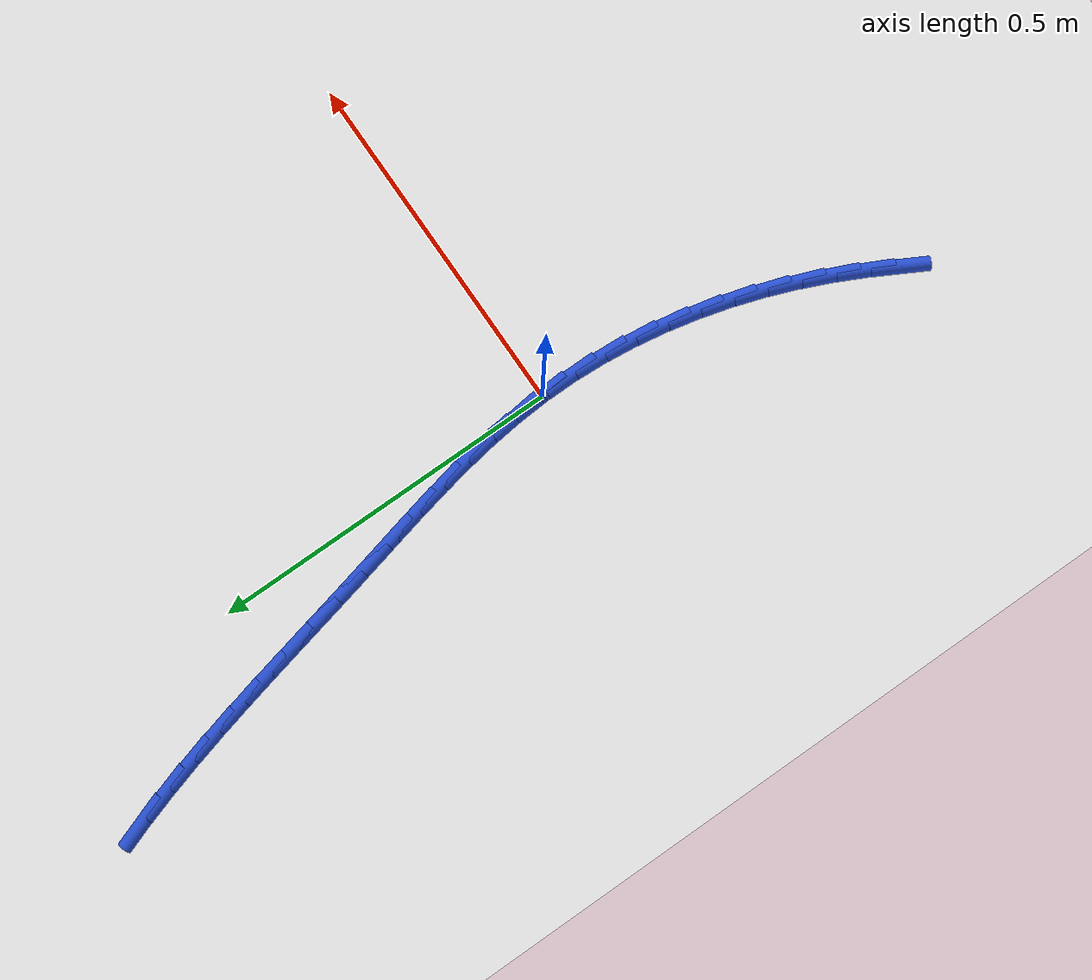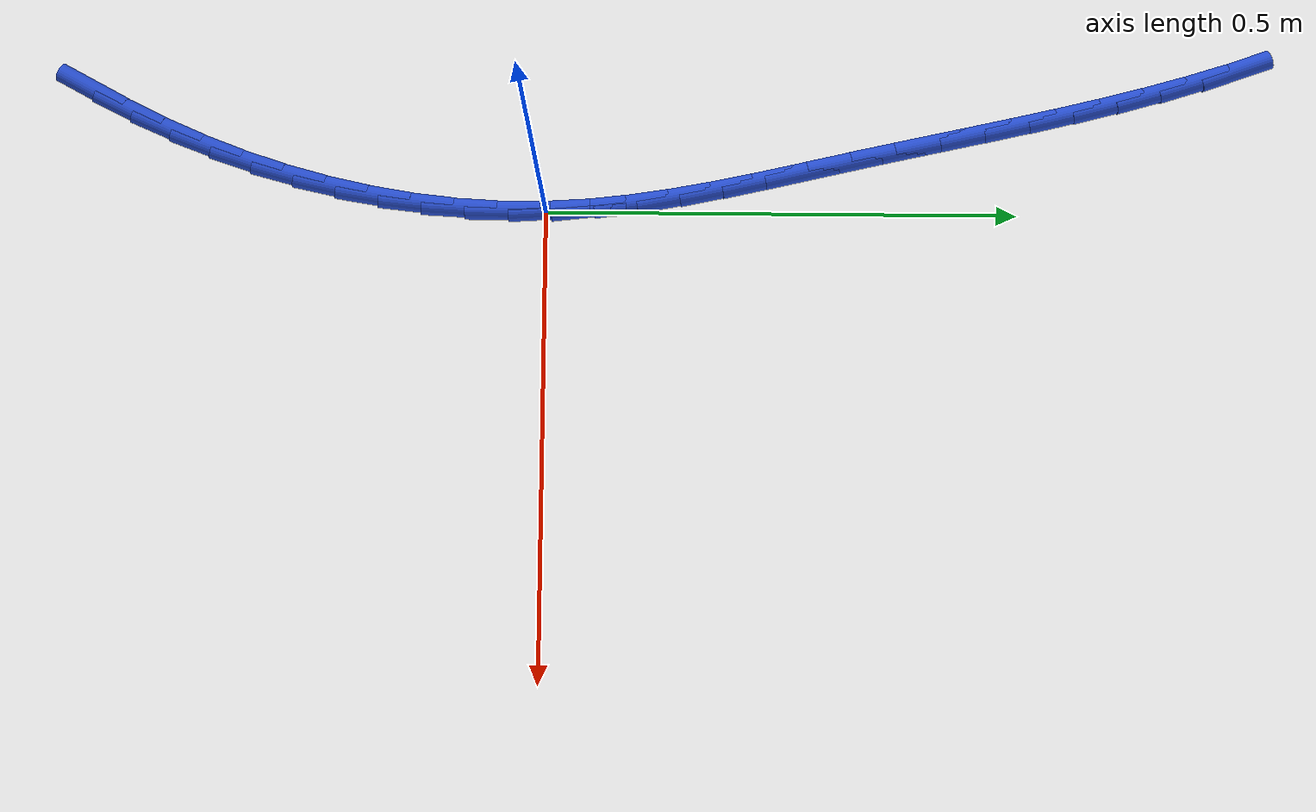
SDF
<sdf version="1.6">
 <world name="default">
  <model name="ground_plane">
   <static>1</static>
   <link name="link">
    <collision name="collision">
     <geometry><plane><normal>0 0 1</normal><size>100 100</size></plane></geometry>
     <surface><friction><ode><mu>100</mu><mu2>50</mu2></ode></friction></surface>
    </collision>
    <visual name="visual">
     <cast_shadows>0</cast_shadows>
     <geometry><plane><normal>0 0 1</normal><size>100 100</size></plane></geometry>
     <material>
      <script><uri>file://media/materials/scripts/gazebo.material</uri><name>Gazebo/WhiteGlow</name></script>
     </material>
    </visual>
   </link>
  </model>
  <model name="line">
   <link name="link_0">
    <pose>-3.2959746043559335e-17 8.326672684688674e-17 0.01 0 1.57 -1.5091461247908138</pose>
    <collision name="collision">
     <geometry><cylinder><radius>0.01</radius><length>0.08</length></cylinder></geometry>
    </collision>
    <visual name="visual">
     <material>
      <script><name>Gazebo/Blue</name><uri>file://media/materials/scripts/gazebo.material</uri></script>
     </material>
     <geometry><cylinder><radius>0.01</radius><length>0.08</length></cylinder></geometry>
    </visual>
   </link>
   <link name="link_1">
    <pose>-0.002797153409749738 0.045313862125779925 0.01 0 1.57 -1.4577290639498848</pose>
    <collision name="collision">
     <geometry><cylinder><radius>0.01</radius><length>0.08</length></cylinder></geometry>
    </collision>
    <visual name="visual">
     <material>
      <script><name>Gazebo/Blue</name><uri>file://media/materials/scripts/gazebo.material</uri></script>
     </material>
     <geometry><cylinder><radius>0.01</radius><length>0.08</length></cylinder></geometry>
    </visual>
   </link>
   <link name="link_2">
    <pose>-0.007915810302056549 0.09039168126019784 0.01 0 1.57 -1.415455938503338</pose>
    <collision name="collision">
     <geometry><cylinder><radius>0.01</radius><length>0.08</length></cylinder></geometry>
    </collision>
    <visual name="visual">
     <material>
      <script><name>Gazebo/Blue</name><uri>file://media/materials/scripts/gazebo.material</uri></script>
     </material>
     <geometry><cylinder><radius>0.01</radius><length>0.08</length></cylinder></geometry>
    </visual>
   </link>
   <link name="link_3">
    <pose>-0.01495766580259047 0.13535823994639926 0.01 0 1.57 -1.3825938123735941</pose>
    <collision name="collision">
     <geometry><cylinder><radius>0.01</radius><length>0.08</length></cylinder></geometry>
    </collision>
    <visual name="visual">
     <material>
      <script><name>Gazebo/Blue</name><uri>file://media/materials/scripts/gazebo.material</uri></script>
     </material>
     <geometry><cylinder><radius>0.01</radius><length>0.08</length></cylinder></geometry>
    </visual>
   </link>
   <link name="link_4">
    <pose>-0.023524415037021518 0.1803383207275299 0.01 0 1.57 -1.3591708956164776</pose>
    <collision name="collision">
     <geometry><cylinder><radius>0.01</radius><length>0.08</length></cylinder></geometry>
    </collision>
    <visual name="visual">
     <material>
      <script><name>Gazebo/Blue</name><uri>file://media/materials/scripts/gazebo.material</uri></script>
     </material>
     <geometry><cylinder><radius>0.01</radius><length>0.08</length></cylinder></geometry>
    </visual>
   </link>
   <link name="link_5">
    <pose>-0.033217753131019635 0.22545670614673508 0.01 0 1.57 -1.3450652586535616</pose>
    <collision name="collision">
     <geometry><cylinder><radius>0.01</radius><length>0.08</length></cylinder></geometry>
    </collision>
    <visual name="visual">
     <material>
      <script><name>Gazebo/Blue</name><uri>file://media/materials/scripts/gazebo.material</uri></script>
     </material>
     <geometry><cylinder><radius>0.01</radius><length>0.08</length></cylinder></geometry>
    </visual>
   </link>
   <link name="link_6">
    <pose>-0.04363937521025485 0.27083817874716043 0.01 0 1.57 -1.3400712112427253</pose>
    <collision name="collision">
     <geometry><cylinder><radius>0.01</radius><length>0.08</length></cylinder></geometry>
    </collision>
    <visual name="visual">
     <material>
      <script><name>Gazebo/Blue</name><uri>file://media/materials/scripts/gazebo.material</uri></script>
     </material>
     <geometry><cylinder><radius>0.01</radius><length>0.08</length></cylinder></geometry>
    </visual>
   </link>
   <link name="link_7">
    <pose>-0.05439097640039716 0.31660752107195145 0.01 0 1.57 -1.3437348259160058</pose>
    <collision name="collision">
     <geometry><cylinder><radius>0.01</radius><length>0.08</length></cylinder></geometry>
    </collision>
    <visual name="visual">
     <material>
      <script><name>Gazebo/Blue</name><uri>file://media/materials/scripts/gazebo.material</uri></script>
     </material>
     <geometry><cylinder><radius>0.01</radius><length>0.08</length></cylinder></geometry>
    </visual>
   </link>
   <link name="link_8">
    <pose>-0.06508317171869205 0.3628848879630075 0.01 0 1.57 -1.349807010793291</pose>
    <collision name="collision">
     <geometry><cylinder><radius>0.01</radius><length>0.08</length></cylinder></geometry>
    </collision>
    <visual name="visual">
     <material>
      <script><name>Gazebo/Blue</name><uri>file://media/materials/scripts/gazebo.material</uri></script>
     </material>
     <geometry><cylinder><radius>0.01</radius><length>0.08</length></cylinder></geometry>
    </visual>
   </link>
   <link name="link_9">
    <pose>-0.07559017495311561 0.40965367740263386 0.01 0 1.57 -1.351460180213948</pose>
    <collision name="collision">
     <geometry><cylinder><radius>0.01</radius><length>0.08</length></cylinder></geometry>
    </collision>
    <visual name="visual">
     <material>
      <script><name>Gazebo/Blue</name><uri>file://media/materials/scripts/gazebo.material</uri></script>
     </material>
     <geometry><cylinder><radius>0.01</radius><length>0.08</length></cylinder></geometry>
    </visual>
   </link>
   <link name="link_10">
    <pose>-0.08608704371158694 0.45674120752523006 0.01 0 1.57 -1.3484228058666943</pose>
    <collision name="collision">
     <geometry><cylinder><radius>0.01</radius><length>0.08</length></cylinder></geometry>
    </collision>
    <visual name="visual">
     <material>
      <script><name>Gazebo/Blue</name><uri>file://media/materials/scripts/gazebo.material</uri></script>
     </material>
     <geometry><cylinder><radius>0.01</radius><length>0.08</length></cylinder></geometry>
    </visual>
   </link>
   <link name="link_11">
    <pose>-0.09676524531468637 0.5039662829931325 0.01 0 1.57 -1.3407202920912638</pose>
    <collision name="collision">
     <geometry><cylinder><radius>0.01</radius><length>0.08</length></cylinder></geometry>
    </collision>
    <visual name="visual">
     <material>
      <script><name>Gazebo/Blue</name><uri>file://media/materials/scripts/gazebo.material</uri></script>
     </material>
     <geometry><cylinder><radius>0.01</radius><length>0.08</length></cylinder></geometry>
    </visual>
   </link>
   <link name="link_12">
    <pose>-0.1078162470829944 0.5511477084686782 0.01 0 1.57 -1.32830211091923</pose>
    <collision name="collision">
     <geometry><cylinder><radius>0.01</radius><length>0.08</length></cylinder></geometry>
    </collision>
    <visual name="visual">
     <material>
      <script><name>Gazebo/Blue</name><uri>file://media/materials/scripts/gazebo.material</uri></script>
     </material>
     <geometry><cylinder><radius>0.01</radius><length>0.08</length></cylinder></geometry>
    </visual>
   </link>
   <link name="link_13">
    <pose>-0.1194315163370914 0.5981042886142037 0.01 0 1.57 -1.3110459625621749</pose>
    <collision name="collision">
     <geometry><cylinder><radius>0.01</radius><length>0.08</length></cylinder></geometry>
    </collision>
    <visual name="visual">
     <material>
      <script><name>Gazebo/Blue</name><uri>file://media/materials/scripts/gazebo.material</uri></script>
     </material>
     <geometry><cylinder><radius>0.01</radius><length>0.08</length></cylinder></geometry>
    </visual>
   </link>
   <link name="link_14">
    <pose>-0.13180252039755783 0.6446548280920457 0.01 0 1.57 -1.2887627219509084</pose>
    <collision name="collision">
     <geometry><cylinder><radius>0.01</radius><length>0.08</length></cylinder></geometry>
    </collision>
    <visual name="visual">
     <material>
      <script><name>Gazebo/Blue</name><uri>file://media/materials/scripts/gazebo.material</uri></script>
     </material>
     <geometry><cylinder><radius>0.01</radius><length>0.08</length></cylinder></geometry>
    </visual>
   </link>
   <link name="link_15">
    <pose>-0.14512072658497413 0.6906181315645412 0.01 0 1.57 -1.2612034450473564</pose>
    <collision name="collision">
     <geometry><cylinder><radius>0.01</radius><length>0.08</length></cylinder></geometry>
    </collision>
    <visual name="visual">
     <material>
      <script><name>Gazebo/Blue</name><uri>file://media/materials/scripts/gazebo.material</uri></script>
     </material>
     <geometry><cylinder><radius>0.01</radius><length>0.08</length></cylinder></geometry>
    </visual>
   </link>
   <link name="link_16">
    <pose>-0.1595776022199206 0.7358130036940264 0.01 0 1.57 -1.228070300148383</pose>
    <collision name="collision">
     <geometry><cylinder><radius>0.01</radius><length>0.08</length></cylinder></geometry>
    </collision>
    <visual name="visual">
     <material>
      <script><name>Gazebo/Blue</name><uri>file://media/materials/scripts/gazebo.material</uri></script>
     </material>
     <geometry><cylinder><radius>0.01</radius><length>0.08</length></cylinder></geometry>
    </visual>
   </link>
   <link name="link_169">
    <pose>-0.1292389872784042 -0.48686602254721295 0.01 0 1.57 1.073674341393615</pose>
    <collision name="collision">
     <geometry><cylinder><radius>0.01</radius><length>0.08</length></cylinder></geometry>
    </collision>
    <visual name="visual">
     <material>
      <script><name>Gazebo/Blue</name><uri>file://media/materials/scripts/gazebo.material</uri></script>
     </material>
     <geometry><cylinder><radius>0.01</radius><length>0.08</length></cylinder></geometry>
    </visual>
   </link>
   <link name="link_170">
    <pose>-0.10709604873874153 -0.4460549171006571 0.01 0 1.57 1.115546722973617</pose>
    <collision name="collision">
     <geometry><cylinder><radius>0.01</radius><length>0.08</length></cylinder></geometry>
    </collision>
    <visual name="visual">
     <material>
      <script><name>Gazebo/Blue</name><uri>file://media/materials/scripts/gazebo.material</uri></script>
     </material>
     <geometry><cylinder><radius>0.01</radius><length>0.08</length></cylinder></geometry>
    </visual>
   </link>
   <link name="link_171">
    <pose>-0.08663282287986365 -0.40425451456651457 0.01 0 1.57 1.1600890118852698</pose>
    <collision name="collision">
     <geometry><cylinder><radius>0.01</radius><length>0.08</length></cylinder></geometry>
    </collision>
    <visual name="visual">
     <material>
      <script><name>Gazebo/Blue</name><uri>file://media/materials/scripts/gazebo.material</uri></script>
     </material>
     <geometry><cylinder><radius>0.01</radius><length>0.08</length></cylinder></geometry>
    </visual>
   </link>
   <link name="link_172">
    <pose>-0.06802173243872435 -0.36151681009315473 0.01 0 1.57 1.2073794758067729</pose>
    <collision name="collision">
     <geometry><cylinder><radius>0.01</radius><length>0.08</length></cylinder></geometry>
    </collision>
    <visual name="visual">
     <material>
      <script><name>Gazebo/Blue</name><uri>file://media/materials/scripts/gazebo.material</uri></script>
     </material>
     <geometry><cylinder><radius>0.01</radius><length>0.08</length></cylinder></geometry>
    </visual>
   </link>
   <link name="link_173">
    <pose>-0.051432679148551624 -0.3178968579834248 0.01 0 1.57 1.2562336187677785</pose>
    <collision name="collision">
     <geometry><cylinder><radius>0.01</radius><length>0.08</length></cylinder></geometry>
    </collision>
    <visual name="visual">
     <material>
      <script><name>Gazebo/Blue</name><uri>file://media/materials/scripts/gazebo.material</uri></script>
     </material>
     <geometry><cylinder><radius>0.01</radius><length>0.08</length></cylinder></geometry>
    </visual>
   </link>
   <link name="link_174">
    <pose>-0.036989346481062474 -0.27350579686887894 0.01 0 1.57 1.3057612059184502</pose>
    <collision name="collision">
     <geometry><cylinder><radius>0.01</radius><length>0.08</length></cylinder></geometry>
    </collision>
    <visual name="visual">
     <material>
      <script><name>Gazebo/Blue</name><uri>file://media/materials/scripts/gazebo.material</uri></script>
     </material>
     <geometry><cylinder><radius>0.01</radius><length>0.08</length></cylinder></geometry>
    </visual>
   </link>
   <link name="link_175">
    <pose>-0.02477492155700394 -0.22850390636095516 0.01 0 1.57 1.3562504583117105</pose>
    <collision name="collision">
     <geometry><cylinder><radius>0.01</radius><length>0.08</length></cylinder></geometry>
    </collision>
    <visual name="visual">
     <material>
      <script><name>Gazebo/Blue</name><uri>file://media/materials/scripts/gazebo.material</uri></script>
     </material>
     <geometry><cylinder><radius>0.01</radius><length>0.08</length></cylinder></geometry>
    </visual>
   </link>
   <link name="link_176">
    <pose>-0.014871221145285255 -0.18305312894763365 0.01 0 1.57 1.4080267788180663</pose>
    <collision name="collision">
     <geometry><cylinder><radius>0.01</radius><length>0.08</length></cylinder></geometry>
    </collision>
    <visual name="visual">
     <material>
      <script><name>Gazebo/Blue</name><uri>file://media/materials/scripts/gazebo.material</uri></script>
     </material>
     <geometry><cylinder><radius>0.01</radius><length>0.08</length></cylinder></geometry>
    </visual>
   </link>
   <link name="link_177">
    <pose>-0.007360062014816239 -0.13731540711689705 0.01 0 1.57 1.4614112743089893</pose>
    <collision name="collision">
     <geometry><cylinder><radius>0.01</radius><length>0.08</length></cylinder></geometry>
    </collision>
    <visual name="visual">
     <material>
      <script><name>Gazebo/Blue</name><uri>file://media/materials/scripts/gazebo.material</uri></script>
     </material>
     <geometry><cylinder><radius>0.01</radius><length>0.08</length></cylinder></geometry>
    </visual>
   </link>
   <link name="link_178">
    <pose>-0.0023232609345060834 -0.09145268335672525 0.01 0 1.57 1.516717435014231</pose>
    <collision name="collision">
     <geometry><cylinder><radius>0.01</radius><length>0.08</length></cylinder></geometry>
    </collision>
    <visual name="visual">
     <material>
      <script><name>Gazebo/Blue</name><uri>file://media/materials/scripts/gazebo.material</uri></script>
     </material>
     <geometry><cylinder><radius>0.01</radius><length>0.08</length></cylinder></geometry>
    </visual>
   </link>
   <link name="link_179">
    <pose>0.0001573653267357986 -0.04562690015509923 0.01 0 1.57 -1.5673473810581715</pose>
    <collision name="collision">
     <geometry><cylinder><radius>0.01</radius><length>0.08</length></cylinder></geometry>
    </collision>
    <visual name="visual">
     <material>
      <script><name>Gazebo/Blue</name><uri>file://media/materials/scripts/gazebo.material</uri></script>
     </material>
     <geometry><cylinder><radius>0.01</radius><length>0.08</length></cylinder></geometry>
    </visual>
   </link>
   <link name="link_180">
    <pose>-1.734723475976807e-17 1.942890293094024e-16 0.01 0 1.57 -1.5073203476356545</pose>
    <collision name="collision">
     <geometry><cylinder><radius>0.01</radius><length>0.08</length></cylinder></geometry>
    </collision>
    <visual name="visual">
     <material>
      <script><name>Gazebo/Blue</name><uri>file://media/materials/scripts/gazebo.material</uri></script>
     </material>
     <geometry><cylinder><radius>0.01</radius><length>0.08</length></cylinder></geometry>
    </visual>
   </link>
   <link name="link_181">
    <pose>-0.0028771736836229415 0.04526607462059216 0.01 0 1.57 -1.507320347635655</pose>
    <collision name="collision">
     <geometry><cylinder><radius>0.01</radius><length>0.08</length></cylinder></geometry>
    </collision>
    <visual name="visual">
     <material>
      <script><name>Gazebo/Blue</name><uri>file://media/materials/scripts/gazebo.material</uri></script>
     </material>
     <geometry><cylinder><radius>0.01</radius><length>0.08</length></cylinder></geometry>
    </visual>
   </link>
  </model>
 </world>
</sdf>
